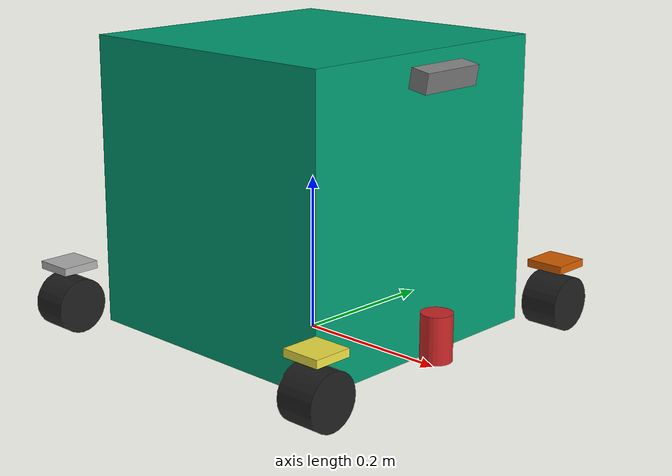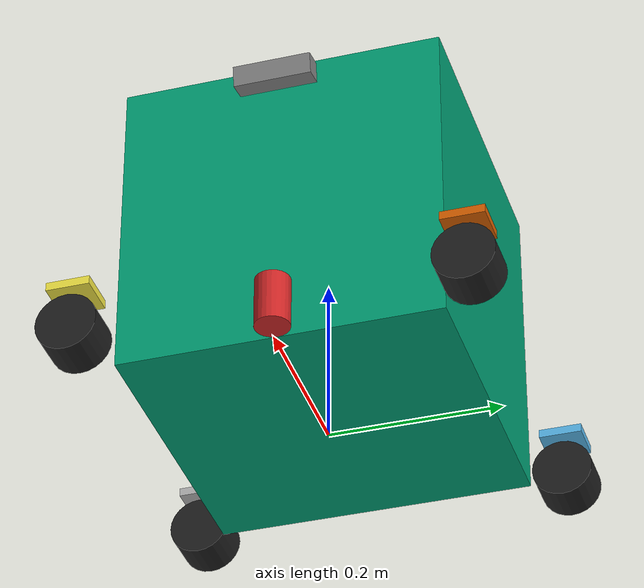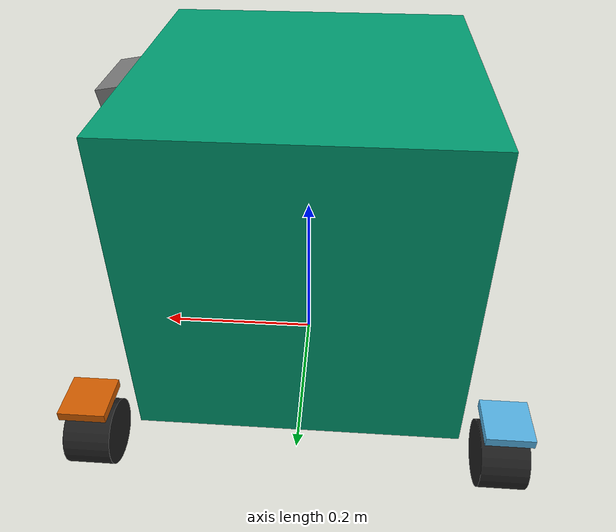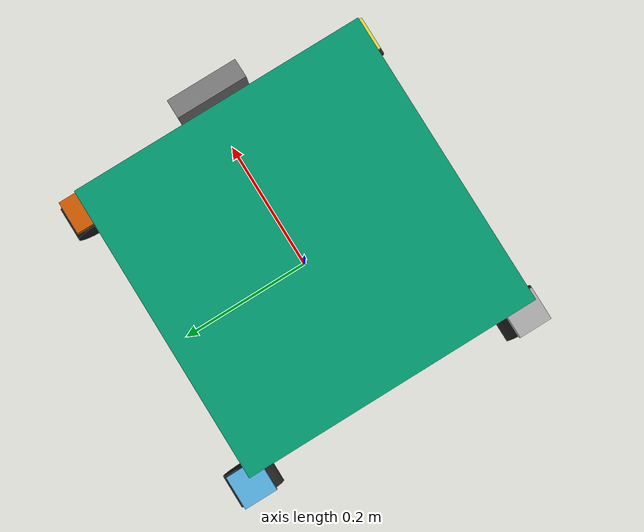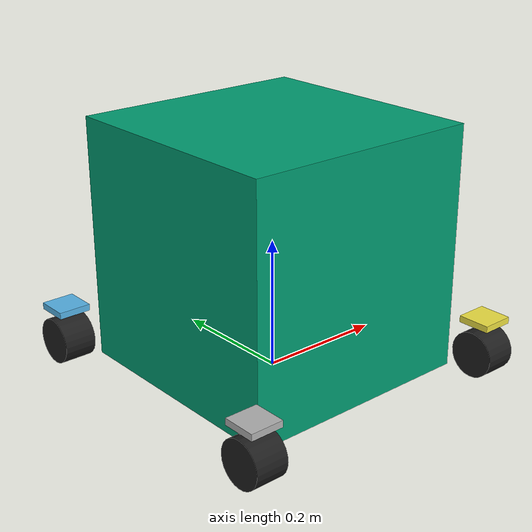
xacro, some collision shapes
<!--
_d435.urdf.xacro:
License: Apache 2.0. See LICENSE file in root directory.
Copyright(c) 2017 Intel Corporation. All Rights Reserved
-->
<?xml version="1.0" ?>
<robot name="simple_swerve" xmlns:xacro="http://ros.org/wiki/xacro">

 <xacro:include filename="$(find nhk2021_simulator)/urdf/swerve_body.urdf.xacro" />
 <xacro:include filename="$(find nhk2021_simulator)/urdf/swerve_wheel.urdf.xacro" />

 <xacro:include filename="$(find nhk2021_simulator)/urdf/lidar.urdf.xacro" />
 <xacro:include filename="$(find nhk2021_simulator)/urdf/imu.urdf.xacro" />

 <xacro:include filename="$(find nhk2021_simulator)/urdf/_d435.urdf.xacro" />

  <gazebo>
    <plugin name="gazebo_ros_control" filename="libgazebo_ros_control.so">
      <robotNamespace>/simple_swerve</robotNamespace>
      <robotSimType>gazebo_ros_control/DefaultRobotHWSim</robotSimType>
      <legacyModeNS>true</legacyModeNS>
    </plugin>
  </gazebo>

 <xacro:wheel rl="rf" parent="base_footprint" />
 <xacro:wheel rl="lf" parent="base_footprint" />
 <xacro:wheel rl="rb" parent="base_footprint" />
 <xacro:wheel rl="lb" parent="base_footprint" />

 <xacro:laser_macro prefix="rplidar" parent="base_footprint" xyz="0.205 0 0.04" />
 <xacro:imu_macro prefix="imu" parent="base_footprint" xyz="0.0 0 0.10" />
 <sensor_d435 parent="rplidar_link">
    <origin xyz="0.0 0.0 0.3" rpy="0 0.1745 0"/>
  </sensor_d435>
</robot>

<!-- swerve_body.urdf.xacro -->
<robot name="body" xmlns:xacro="http://ros.org/wiki/xacro">
<link name="base_footprint" />
<link name="base_link" />
<joint name="base_joint" type="fixed">
<parent link="base_footprint" />
   <child link="base_link" />
   <origin xyz="0 0 0.01" rpy="0 0 0" />
</joint>

<xacro:property name="b_m" value="5.58"/>
<xacro:property name="b_m2" value="${b_m/12}"/><!--for calculation of inertia-->
<xacro:property name="b_w" value="0.37"/>
<xacro:property name="b_h" value="0.37"/>
<xacro:property name="b_d" value="0.37"/>

<link name="body">
   <visual>
　　<geometry>
　　　<box size="${b_d} ${b_w} ${b_h}" />
     </geometry>
  </visual>
   <collision>
　　<geometry>
　　　<box size="${b_d*0.95} ${b_w*0.95} ${b_h*0.95}" />
     </geometry>
  </collision>
  <inertial>
     <origin xyz="0 0 0" rpy="0 0 0" />
     <mass value="${b_m}" />
    <inertia ixx="${b_m2*(b_h*b_h+b_w*b_w)}" ixy="0"    ixz="0"
                 iyx="0"   iyy="${b_m2*(b_h*b_h+b_d*b_d)}"  iyz="0"
		 izx="0"   izy="0"  izz="${b_m2*(b_w*b_w+b_d*b_d)}" />
  </inertial>
</link>

<joint name="body_joint" type="fixed">
<parent link="base_footprint" />
   <child link="body" />
   <origin xyz="0 0 0.195" rpy="0 0 0" />
</joint>

</robot>

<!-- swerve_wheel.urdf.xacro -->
<robot name="wheel" xmlns:xacro="http://ros.org/wiki/xacro" >

<xacro:property name="PI" value="3.1415926535897931"/>
<xacro:property name="wheel_radius" value="0.035"/>
<xacro:property name="wheel_height" value="0.05"/>
<xacro:property name="wheel_mass" value="0.50"/>

<xacro:macro name="wheel" params="rl parent">

<xacro:property name="b_m" value="0.1"/>
<xacro:property name="b_m2" value="${b_m/12}"/><!--for calculation of inertia-->
<xacro:property name="b_w" value="0.01"/>
<xacro:property name="b_h" value="0.05"/>
<xacro:property name="b_d" value="0.05"/>

<link name="wheel_${rl}_round_table">
   <visual>
　　<geometry>
　　　<box size="${b_d} ${b_w} ${b_h}" />
     </geometry>
  </visual>
   <collision>
　　<geometry>
　　　<box size="${b_d*0.95} ${b_w*0.95} ${b_h*0.95}" />
     </geometry>
  </collision>
  <inertial>
     <origin xyz="0 0 0" rpy="0 0 0" />
     <mass value="${b_m}" />
    <inertia ixx="${b_m2*(b_h*b_h+b_w*b_w)}" ixy="0"    ixz="0"
                 iyx="0"   iyy="${b_m2*(b_h*b_h+b_d*b_d)}"  iyz="0"
		 izx="0"   izy="0"  izz="${b_m2*(b_w*b_w+b_d*b_d)}" />
  </inertial>
</link>

<link name="wheel_${rl}">
<visual>
  <geometry>
     <cylinder length="${wheel_height}" radius="${wheel_radius}" />
  </geometry>
</visual>
   <collision>
　　<geometry>
　　　<cylinder radius="${wheel_radius}" length="${wheel_height}" />
     </geometry>
  </collision>
  <inertial>
     <origin xyz="0 0 0" rpy="0 0 0" />
     <mass value="${wheel_mass}" />
    <inertia ixx="${wheel_mass*(3*wheel_radius*wheel_radius+wheel_height*wheel_height)/12}"
        ixy="0"  ixz="0"
        iyx="0"  iyy="${wheel_mass*(3*wheel_radius*wheel_radius+wheel_height*wheel_height)/12}"
         iyz="0"
         izx="0"  izy="0"  izz="${wheel_mass*(wheel_radius*wheel_radius)/2}" />
  </inertial>
</link>
<joint name="wheel_${rl}_joint" type="continuous">
  <parent link="wheel_${rl}_round_table" />
  <child link="wheel_${rl}" />
  <origin xyz="0.0 -0.05 0.0" rpy="0 ${PI/2} 0" /><!--z: position from base_link - position from body-->
  <axis xyz="0 0 -1" />
  <limit effort="6.0" velocity="60.0" /><!-- maximum torqe(<8.82), maximum velocity-->
  <dynamics damping="0.1"/>
</joint>

<joint name="wheel_${rl}_angular_joint" type="continuous">
  <parent link="${parent}" />
  <child link="wheel_${rl}_round_table" />
  <xacro:if value="${rl == 'rf'}">
    <origin xyz="0.22 -0.22 0.085" rpy="${PI/2} 0 0" /><!--z: position from base_link - position from body-->
  </xacro:if>
  <xacro:if value="${rl == 'lf'}">
     <origin xyz="0.22 0.22 0.085" rpy="${PI/2} 0 0" />
  </xacro:if>
  <xacro:if value="${rl == 'rb'}">
    <origin xyz="-0.22 -0.22 0.085" rpy="${PI/2} 0 0" /><!--z: position from base_link - position from body-->
  </xacro:if>
  <xacro:if value="${rl == 'lb'}">
     <origin xyz="-0.22 0.22 0.085" rpy="${PI/2} 0 0" />
  </xacro:if>
  <axis xyz="0 1 0" />
  <limit effort="6.0" velocity="12.0" /><!-- maximum torqe(<8.82), maximum velocity-->
  <dynamics damping="0.1"/>
</joint>

<gazebo reference="wheel_${rl}">
    <material>Gazebo/Black</material>
    <mu1 value="3.0" /><!--friction-->
    <mu2 value="3.0" />
</gazebo>

    <transmission name="wheel_${rl}_trans" type="SimpleTransmission">
      <type>transmission_interface/SimpleTransmission</type>
        <actuator name="wheel_${rl}_motor">
          <hardwareInterface>hardware_interface/EffortJointInterface</hardwareInterface>
          <mechanicalReduction>1</mechanicalReduction>
        </actuator>
      <joint name="wheel_${rl}_joint">
        <hardwareInterface>hardware_interface/EffortJointInterface</hardwareInterface>
      </joint>
    </transmission>

    <transmission name="wheel_${rl}_angular_trans" type="SimpleTransmission">
      <type>transmission_interface/SimpleTransmission</type>
        <actuator name="wheel_${rl}_angular_motor">
          <hardwareInterface>hardware_interface/EffortJointInterface</hardwareInterface>
          <mechanicalReduction>1</mechanicalReduction>
        </actuator>
      <joint name="wheel_${rl}_angular_joint">
        <hardwareInterface>hardware_interface/EffortJointInterface</hardwareInterface>
      </joint>
    </transmission>

</xacro:macro>
</robot>

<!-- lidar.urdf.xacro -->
<robot name="lidar" xmlns:xacro="http://ros.org/wiki/xacro">
  <xacro:macro name="laser_macro" params="parent prefix xyz">
    <joint name="${prefix}_joint" type="fixed">
      <parent link="${parent}"/>
      <child  link="${prefix}_link"/>
      <origin xyz="${xyz}" rpy="0 0 0"/>
    </joint>
    <link name="${prefix}_link">
      <visual>
        <origin xyz="0 0 0" rpy="0 0 0" />
        <geometry>
          <cylinder radius="0.02" length="0.06" />
        </geometry>
        <material name="red" />
      </visual>
      <collision>
        <origin xyz="0 0 0" rpy="0 0 0"/>
        <geometry>
          <cylinder radius="0.02" length="0.06" />
        </geometry>
      </collision>
    </link>
    <gazebo reference="${prefix}_link">
      <material>Gazebo/Red</material>
      <sensor type="ray" name="${prefix}">
        <pose>0 0 0 0 0 0</pose>
        <visualize>false</visualize>
        <update_rate>10</update_rate>
        <ray>
          <scan>
            <horizontal>
              <samples>400</samples>
              <resolution>1</resolution>
              <min_angle>${radians(-180)}</min_angle>
              <max_angle>${radians(180)}</max_angle>
            </horizontal>
          </scan>
          <range>
            <min>0.10</min>
            <max>20.0</max>
            <resolution>0.01</resolution>
          </range>
          <noise>
            <type>gaussian</type>
            <mean>0.0</mean>
            <stddev>0.01</stddev>
          </noise>
        </ray>
        <plugin name="gazebo_ros_lidar_controller" filename="libgazebo_ros_laser.so">
          <topicName>/scan</topicName>
          <frameName>${prefix}_link</frameName>
        </plugin>
      </sensor>
    </gazebo>
  </xacro:macro>
</robot>

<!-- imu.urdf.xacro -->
<robot name="imu" xmlns:xacro="http://ros.org/wiki/xacro">
<xacro:macro name="imu_macro" params="parent prefix xyz">
    <joint name="imu_joint" type="fixed">
      <parent link="${parent}"/>
      <child  link="${prefix}_link"/>
      <origin xyz="${xyz}" rpy="0 0 0"/>
    </joint>
    <link name="${prefix}_link"/>
    <gazebo reference="${prefix}_link">
      <gravity>true</gravity>
      <sensor name="imu_sensor" type="imu">
        <always_on>true</always_on>
        <update_rate>100</update_rate>
        <visualize>true</visualize>
        <topic>data</topic>
        <plugin filename="libgazebo_ros_imu_sensor.so" name="imu_plugin">
          <topicName>${prefix}</topicName><!--${prefix}/data-->
          <bodyName>${prefix}_link</bodyName>
          <updateRateHZ>30.0</updateRateHZ>
          <gaussianNoise>0.0</gaussianNoise>
          <xyzOffset>0 0 0</xyzOffset>
          <rpyOffset>0 0 0</rpyOffset>
          <frameName>${prefix}_link</frameName>
        </plugin>
        <pose>0 0 0 0 0 0</pose>
      </sensor>
    </gazebo>
  </xacro:macro>
</robot>

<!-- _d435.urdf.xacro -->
<robot name="sensor_d435" xmlns:xacro="http://ros.org/wiki/xacro">
  <!--File includes-->
  <xacro:include filename="$(find nhk2021_simulator)/urdf/_d435.gazebo.xacro"/>

  <xacro:macro name="sensor_d435" params="name:=camera topics_ns:=camera parent *origin">
    <xacro:property name="M_PI" value="3.1415926535897931" />

    <!-- The following values are approximate, and the camera node
     publishing TF values with actual calibrated camera extrinsic values -->
    <xacro:property name="d435_cam_depth_to_left_ir_offset" value="0.0"/>
    <xacro:property name="d435_cam_depth_to_right_ir_offset" value="-0.050"/>
    <xacro:property name="d435_cam_depth_to_color_offset" value="0.015"/>

    <!-- The following values model the aluminum peripherial case for the
  	D435 camera, with the camera joint represented by the actual
  	peripherial camera tripod mount -->
    <xacro:property name="d435_cam_width" value="0.090"/>
    <xacro:property name="d435_cam_height" value="0.025"/>
    <xacro:property name="d435_cam_depth" value="0.02505"/>
    <xacro:property name="d435_cam_mount_from_center_offset" value="0.0149"/>

    <!-- The following offset is relative the the physical D435 camera peripherial
  	camera tripod mount -->
    <xacro:property name="d435_cam_depth_px" value="${d435_cam_mount_from_center_offset}"/>
    <xacro:property name="d435_cam_depth_py" value="0.0175"/>
    <xacro:property name="d435_cam_depth_pz" value="${d435_cam_height/2}"/>

    <material name="${name}_aluminum">
	  <color rgba="0.5 0.5 0.5 1"/>
    </material>

    <!-- camera body, with origin at bottom screw mount -->
    <joint name="${name}_joint" type="fixed">
      <xacro:insert_block name="origin" />
      <parent link="${parent}"/>
      <child link="${name}_bottom_screw_frame" />
    </joint>
    <link name="${name}_bottom_screw_frame"/>

    <joint name="${name}_link_joint" type="fixed">
      <origin xyz="0 ${d435_cam_depth_py} ${d435_cam_depth_pz}" rpy="0 0 0"/>
      <parent link="${name}_bottom_screw_frame"/>
      <child link="${name}_link" />
    </joint>

    <link name="${name}_link">
      <visual>
      <origin xyz="${d435_cam_mount_from_center_offset} ${-d435_cam_depth_py} 0" rpy="${M_PI/2} 0 ${M_PI/2}"/>
        <geometry>
          <mesh filename="package://realsense2_description/meshes/d435.dae" />
        </geometry>
        <material name="${name}_aluminum"/>
      </visual>
      <collision>
        <origin xyz="0 ${-d435_cam_depth_py} 0" rpy="0 0 0"/>
        <geometry>
        <box size="${d435_cam_depth} ${d435_cam_width} ${d435_cam_height}"/>
        </geometry>
      </collision>
      <inertial>
        <!-- The following are not reliable values, and should not be used for modeling -->
        <mass value="0.564" />
        <origin xyz="0 0 0" />
        <inertia ixx="0.003881243" ixy="0.0" ixz="0.0" iyy="0.000498940" iyz="0.0" izz="0.003879257" />
      </inertial>
    </link>

    <!-- camera depth joints and links -->
    <joint name="${name}_depth_joint" type="fixed">
      <origin xyz="0 0 0" rpy="0 0 0"/>
      <parent link="${name}_link"/>
      <child link="${name}_depth_frame" />
    </joint>
    <link name="${name}_depth_frame"/>

    <joint name="${name}_depth_optical_joint" type="fixed">
      <origin xyz="0 0 0" rpy="${-M_PI/2} 0 ${-M_PI/2}" />
      <parent link="${name}_depth_frame" />
      <child link="${name}_depth_optical_frame" />
    </joint>
    <link name="${name}_depth_optical_frame"/>

    <!-- camera left IR joints and links -->
    <joint name="${name}_left_ir_joint" type="fixed">
      <origin xyz="0 ${d435_cam_depth_to_left_ir_offset} 0" rpy="0 0 0" />
      <parent link="${name}_depth_frame" />
      <child link="${name}_left_ir_frame" />
    </joint>
    <link name="${name}_left_ir_frame"/>

    <joint name="${name}_left_ir_optical_joint" type="fixed">
      <origin xyz="0 0 0" rpy="${-M_PI/2} 0 ${-M_PI/2}" />
      <parent link="${name}_left_ir_frame" />
      <child link="${name}_left_ir_optical_frame" />
    </joint>
    <link name="${name}_left_ir_optical_frame"/>

    <!-- camera right IR joints and links -->
    <joint name="${name}_right_ir_joint" type="fixed">
      <origin xyz="0 ${d435_cam_depth_to_right_ir_offset} 0" rpy="0 0 0" />
      <parent link="${name}_depth_frame" />
      <child link="${name}_right_ir_frame" />
    </joint>
    <link name="${name}_right_ir_frame"/>

    <joint name="${name}_right_ir_optical_joint" type="fixed">
      <origin xyz="0 0 0" rpy="${-M_PI/2} 0 ${-M_PI/2}" />
      <parent link="${name}_right_ir_frame" />
      <child link="${name}_right_ir_optical_frame" />
    </joint>
    <link name="${name}_right_ir_optical_frame"/>

    <!-- camera color joints and links -->
    <joint name="${name}_color_joint" type="fixed">
      <origin xyz="0 ${d435_cam_depth_to_color_offset} 0" rpy="0 0 0" />
      <parent link="${name}_depth_frame" />
      <child link="${name}_color_frame" />
    </joint>
    <link name="${name}_color_frame"/>

    <joint name="${name}_color_optical_joint" type="fixed">
      <origin xyz="0 0 0" rpy="${-M_PI/2} 0 ${-M_PI/2}" />
      <parent link="${name}_color_frame" />
      <child link="${name}_color_optical_frame" />
    </joint>
    <link name="${name}_color_optical_frame"/>

    <!-- Realsense Gazebo Plugin -->
    <xacro:gazebo_d435 camera_name="${name}" reference_link="${name}_link" topics_ns="${topics_ns}" depth_optical_frame="${name}_depth_optical_frame" color_optical_frame="${name}_color_optical_frame" infrared1_optical_frame="${name}_left_ir_optical_frame" infrared2_optical_frame="${name}_right_ir_optical_frame"/>

  </xacro:macro>
</robot>
